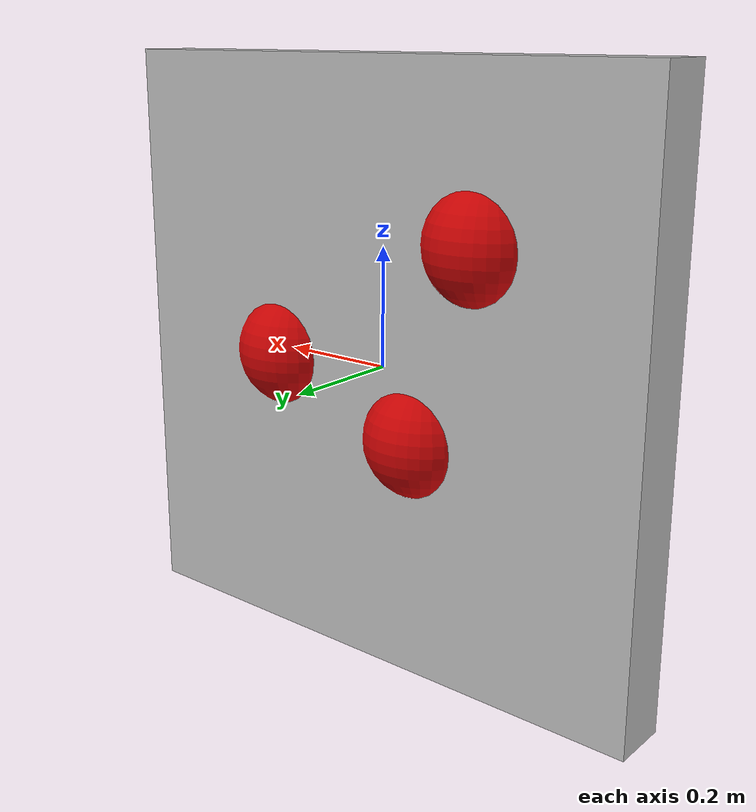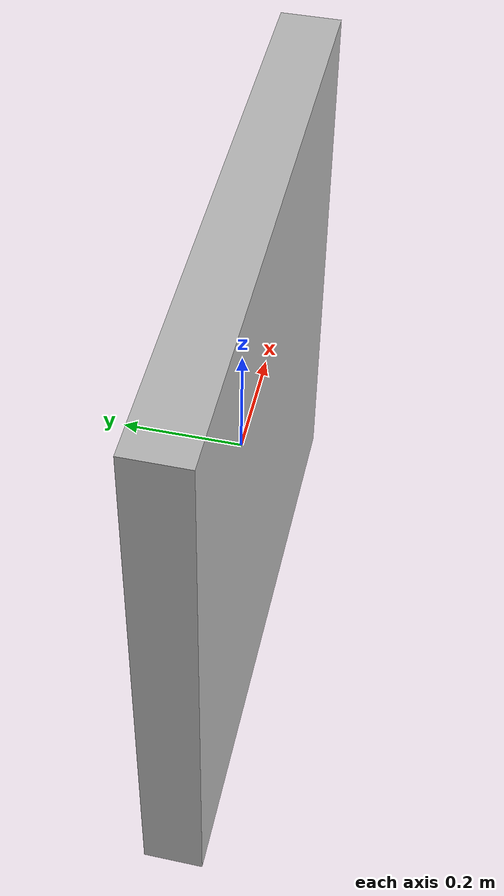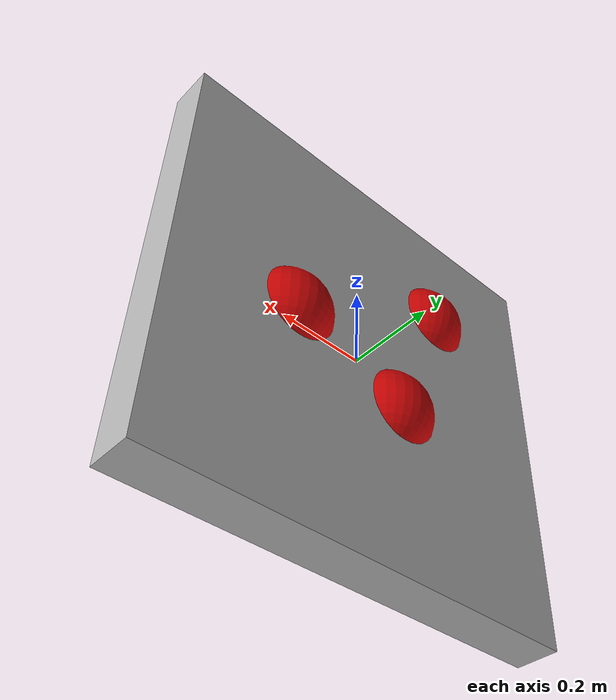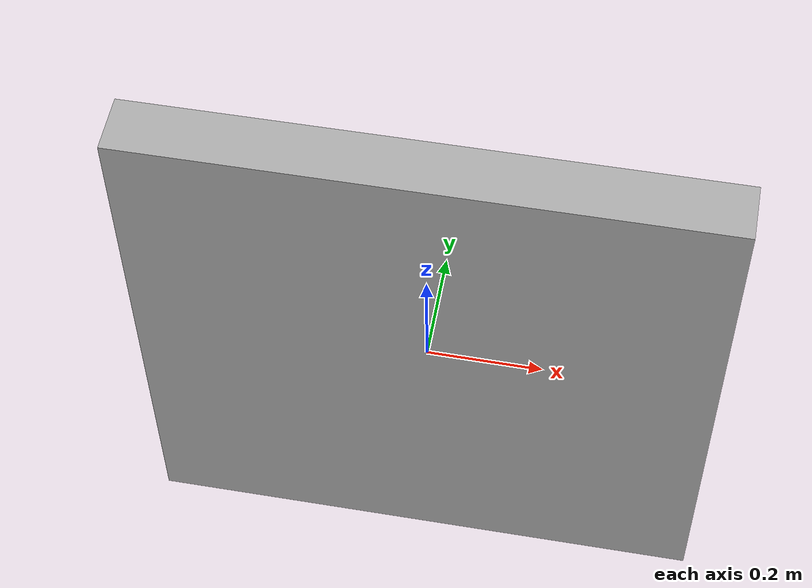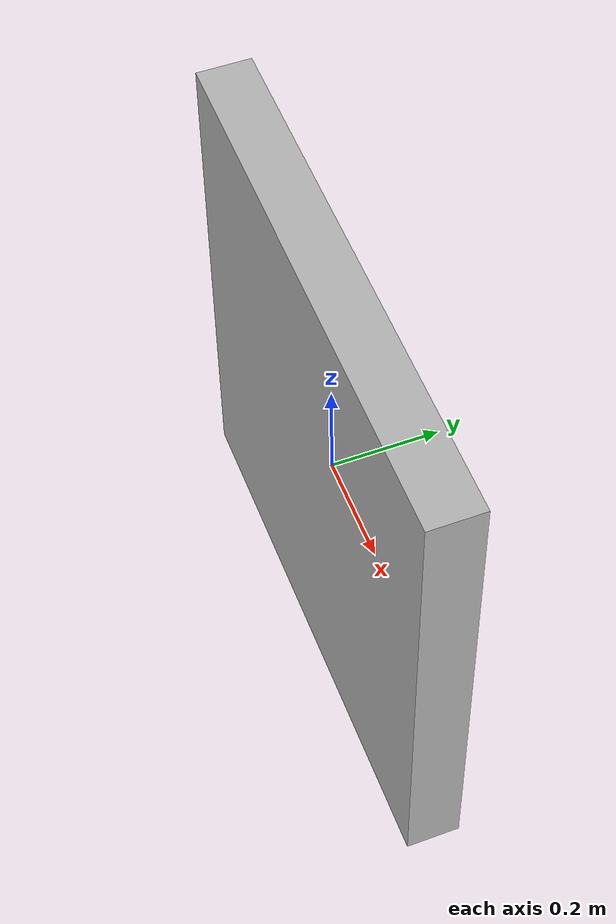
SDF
<?xml version='1.0'?>
<sdf version="1.6">
  <model name="tomato_3">
    <static>true</static>
    <link name="tomato_3">
      <collision name="collision">
        <geometry>
          <box>
            <size>1 1 1</size>
          </box>
        </geometry>
      </collision>
      <visual name="visual">
        <geometry>
          <mesh>
            <scale>1 1 1</scale>
            <uri>model://icuas24/tomato_3.dae</uri>
          </mesh>
        </geometry>
      </visual>
    </link>
  </model>
</sdf>
